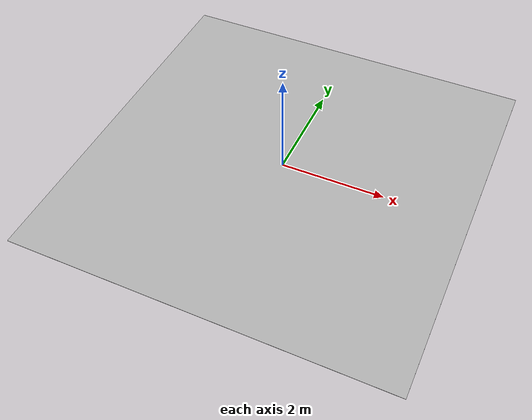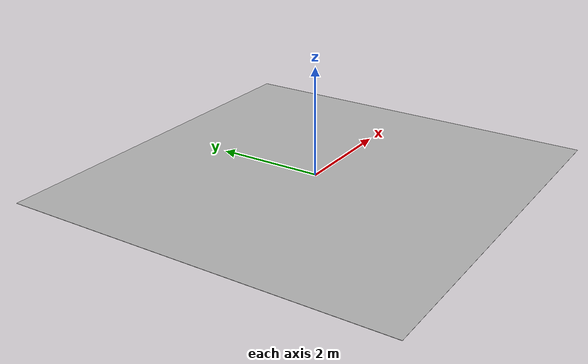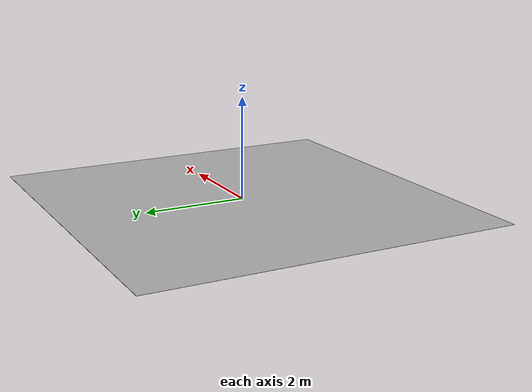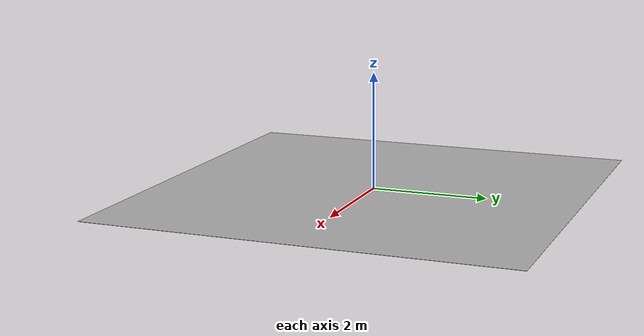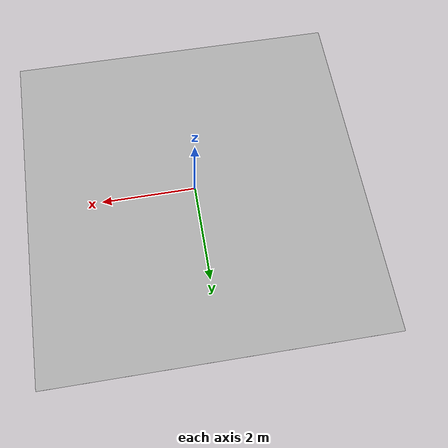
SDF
<sdf version='1.9'>
  <model name='plane'>
  <static>true</static>
    <link name='planeLink'>
      <inertial>
        <pose>0 0 0 0 0 0</pose>
        <mass>1</mass>
        <inertia>
          <ixx>1</ixx>
          <ixy>0</ixy>
          <ixz>0</ixz>
          <iyy>1</iyy>
          <iyz>0</iyz>
          <izz>1</izz>
        </inertia>
      </inertial>
      <collision name='planeLink_collision'>
        <pose>0 0 0 0 0 0</pose>
        <geometry>
          <box>
            <size>14 14 0.074999999999999997</size>
          </box>
        </geometry>
      </collision>
      <visual name='planeLink_visual'>
        <pose>0 0 0 0 3.14 0</pose>
        <geometry>
          <mesh>
            <scale>3.6 3.6 0.2</scale>
            <uri>meshes/sdcs_map.dae</uri>
          </mesh>
        </geometry>
      </visual>
    </link>
  </model>
</sdf>
